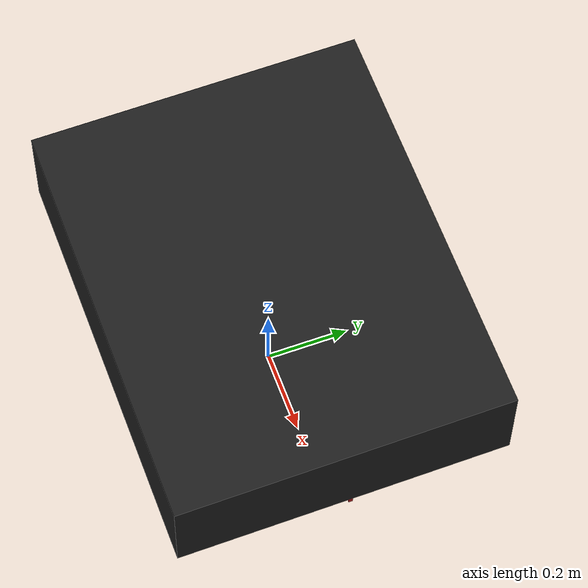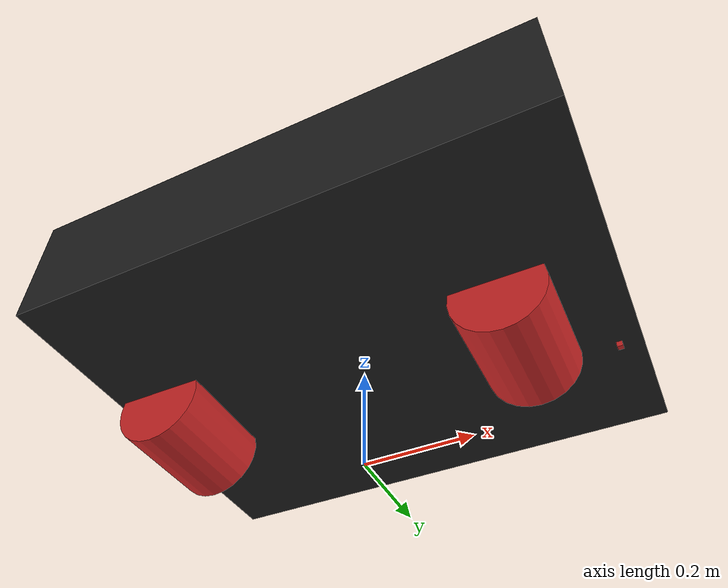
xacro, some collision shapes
<?xml version="1.0" ?>
<robot name="agv_for_line_following" xmlns:xacro="http://ros.org/wiki/xacro">
  <xacro:include filename="$(find agv_description)/urdf/common_properties.xacro"/>
  <xacro:include filename="$(find agv_description)/urdf/agv_for_line_following.gazebo.xacro"/>

  <link name="base_footprint"/>

  <joint name="base_joint" type="fixed">
    <parent link="base_footprint"/>
    <child link="base_link"/>
    <origin xyz="0.0 0.0 0.12" rpy="0 0 0"/>
  </joint>

  <link name="base_link">
    <visual>
      <origin xyz="0.0 0 0.07" rpy="0 0 1.57"/>
      <geometry>
        <mesh filename="package://agv_description/meshes/bases/agv_base.stl" scale="0.001 0.001 0.001"/>
      </geometry>
      <material name="light_black"/>
    </visual>

    <collision>
      <origin xyz="0.0 0 0.22" rpy="0 0 0"/>
      <geometry>
        <box size="1.0 0.8 0.24"/>
      </geometry>
    </collision>

    <inertial>
      <origin xyz="0 0 0" rpy="0 0 0"/>
      <mass value="10"/>
      <inertia ixx="6.48224043" ixy="5.06925791e-2" ixz="2.42332909e-2"
               iyy="2.65332346" iyz="-1.25236226e-2"
               izz="7.7704931" />
    </inertial>
  </link>

  <joint name="caster_left_joint" type="fixed">
    <parent link="base_link"/>
    <child link="caster_left_link"/>
    <origin xyz="0 0.3118 0.03" rpy="0 0 1.57"/>
  </joint>

  <link name="caster_left_link">

    <inertial>
      <origin xyz="0 0 0" />
      <mass value="0.5" />
      <inertia ixx="3.21479325e-03" ixy="-1.62611171e-05" ixz="-7.91864042e-04"
               iyy="4.53599232e-03" iyz="-3.15202900e-05"
               izz="2.24290037e-03" />
      </inertial>
  </link>

  <joint name="caster_right_joint" type="fixed">
    <parent link="base_link"/>
    <child link="caster_right_link"/>
    <origin xyz="0 -0.3118 0.03" rpy="0 0 1.57"/>
  </joint>

  <link name="caster_right_link">

    <inertial>
      <origin xyz="0 0 0" />
      <mass value="0.5" />
      <inertia ixx="3.21479325e-03" ixy="-1.62611171e-05" ixz="-7.91864042e-04"
               iyy="4.53599232e-03" iyz="-3.15202900e-05"
               izz="2.24290037e-03" />
      </inertial>
  </link>

  <joint name="camera_joint" type="fixed">
    <axis xyz="0 1 0" />
    <origin xyz="0.46 0.03 0" rpy="0 0 0"/>
    <parent link="base_link"/>
    <child link="camera_link"/>
  </joint>

  <!-- Camera -->
  <link name="camera_link">
    <collision>
      <origin xyz="0 0 0" rpy="0 0 0"/>
      <geometry>
	      <box size="0.01 0.01 0.01"/>
      </geometry>
    </collision>

    <visual>
      <origin xyz="0 0 0" rpy="0 0 0"/>
      <geometry>
	        <box size="0.01 0.01 0.01"/>
      </geometry>
      <material name="red"/>
    </visual>

    <inertial>
      <mass value="1e-5" />
      <origin xyz="0 0 0" rpy="0 0 0"/>
      <inertia ixx="1e-6" ixy="0" ixz="0" iyy="1e-6" iyz="0" izz="1e-6" />
    </inertial>
  </link>

  <!-- generate an optical frame http://www.ros.org/reps/rep-0103.html#suffix-frames
      so that ros and opencv can operate on the camera frame correctly -->
  <joint name="camera_optical_joint" type="fixed">
    <!-- these values have to be these values otherwise the gazebo camera image
        won't be aligned properly with the frame it is supposedly originating from -->
    <origin xyz="0 0 0" rpy="-1.57 0 -1.57"/>
    <parent link="camera_link"/>
    <child link="camera_link_optical"/>
  </joint>

  <link name="camera_link_optical">
  </link>

    <!-- steering joint -->
  <joint name="wheel_left_steering_joint" type="continuous">
    <origin xyz="-0.4 0.0 0.075" rpy="0 0 0"/>
    <parent link="base_link"/>
    <child link="wheel_left_steering"/>
    <axis xyz="0 0 1"/>
    <anchor xyz="0 0 0"/>
    <limit effort="100" velocity="100" k_velocity="0"/>
    <joint_properties damping="0.0" friction="0.0"/>
  </joint>
  <link name="wheel_left_steering">
    <visual name="wheel_left_steering_visual">
      <origin xyz="0 0 0" rpy="0 0 0"/>
      <geometry name="wheel_left_steering_geometry">
        <cylinder radius="0.01" length="0.05"/>
      </geometry>
      <material name="blue"/>
    </visual>
    <inertial>
      <origin xyz="0 0 0" />
      <mass value="0.001" />
      <inertia ixx="3.21479325e-09" ixy="1.62611171e-9" ixz="7.91864042e-9"
               iyy="4.53599232e-09" iyz="3.15202900e-9"
               izz="2.24290037e-09" />
      </inertial>
  </link>
  <gazebo reference="wheel_left_steering">
    <material value="Gazebo/Blue"/>
  </gazebo>

  <!-- steering joint -->
  <joint name="wheel_right_steering_joint" type="continuous">
    <origin xyz="0.3 0.0 0.075" rpy="0 0 0"/>
    <parent link="base_link"/>
    <child link="wheel_right_steering"/>
    <axis xyz="0 0 1"/>
    <anchor xyz="0 0 0"/>
    <limit effort="100" velocity="100" k_velocity="0"/>
    <joint_properties damping="0.0" friction="0.0"/>
  </joint>
  <link name="wheel_right_steering">
    <visual name="wheel_right_steering_visual">
      <origin xyz="0 0 0" rpy="0 0 0"/>
      <geometry name="wheel_right_steering_geometry">
        <cylinder radius="0.01" length="0.05"/>
      </geometry>
      <material name="blue"/>
    </visual>
    <inertial>
      <origin xyz="0 0 0" />
      <mass value="0.001" />
      <inertia ixx="3.21479325e-09" ixy="1.62611171e-9" ixz="7.91864042e-9"
               iyy="4.53599232e-09" iyz="3.15202900e-9"
               izz="2.24290037e-09" />
      </inertial>
  </link>
  <gazebo reference="wheel_right_steering">
    <material value="Gazebo/Blue"/>
  </gazebo>

  <joint name="wheel_left_joint" type="continuous">
    <parent link="wheel_left_steering"/>
    <child link="wheel_left_link"/>
    <origin xyz="0 0 0" rpy="-1.57 0 0"/>
    <axis xyz="0 0 1"/>
  </joint>

  <link name="wheel_left_link">
    <visual>
      <origin xyz="0.0 0 0" rpy="0 0 0"/>
      <geometry>
        <cylinder length="0.22" radius="0.09"/>
      </geometry>
      <material name="red"/>
    </visual>

    <collision>
      <origin xyz="0.0 0 0" rpy="0 0 0"/>
      <geometry>
        <cylinder length="0.22" radius="0.09"/>
      </geometry>
    </collision>

    <inertial>
      <origin xyz="0 0 0" />
      <mass value="1.5" />
      <inertia ixx="4.05139588e-2" ixy="5.22245694e-3" ixz="1.40418470e-3"
               iyy="4.88302387e-2" iyz="1.86962703e-3"
               izz="4.58877115e-2" />
      </inertial>
  </link>

  <joint name="wheel_right_joint" type="continuous">
    <parent link="wheel_right_steering"/>
    <child link="wheel_right_link"/>
    <origin xyz="0 0.0 0" rpy="-1.57 0 0"/>
    <axis xyz="0 0 1"/>
  </joint>

  <link name="wheel_right_link">
    <visual>
      <origin xyz="0.0 0 0" rpy="0 0 0"/>
      <geometry>
        <cylinder length="0.22" radius="0.09"/>
      </geometry>
      <material name="red"/>
    </visual>

    <collision>
      <origin xyz="0 0 0" rpy="0 0 0"/>
      <geometry>
        <cylinder length="0.22" radius="0.09"/>
      </geometry>
    </collision>

    <inertial>
      <origin xyz="0 0 0" />
      <mass value="1.5" />
      <inertia ixx="4.05139588e-2" ixy="5.22245694e-3" ixz="1.40418470e-3"
               iyy="4.88302387e-2" iyz="1.86962703e-3"
               izz="4.58877115e-2" />
      </inertial>
  </link>

</robot>
